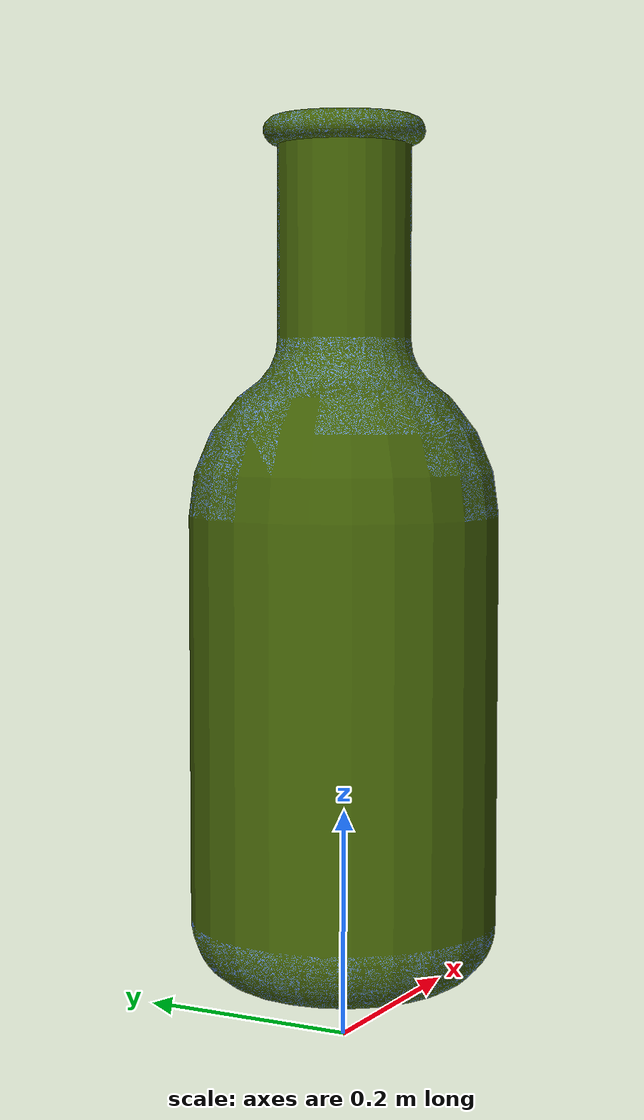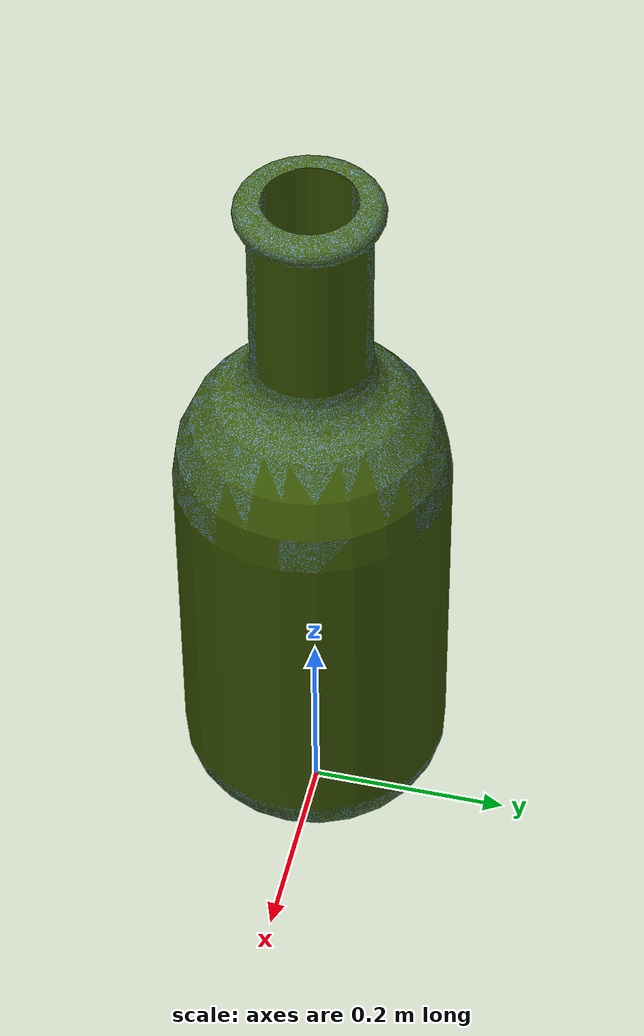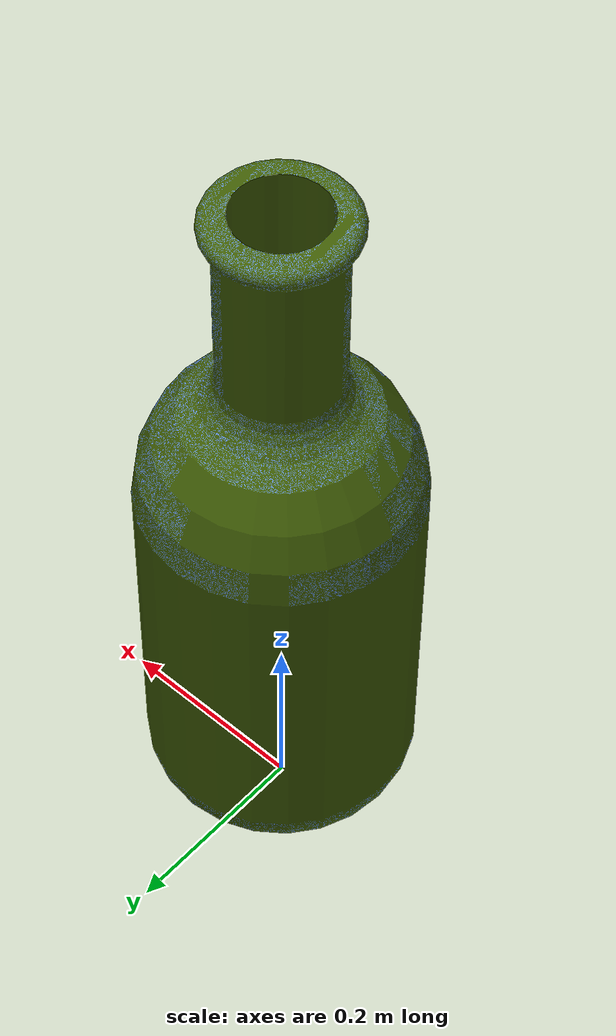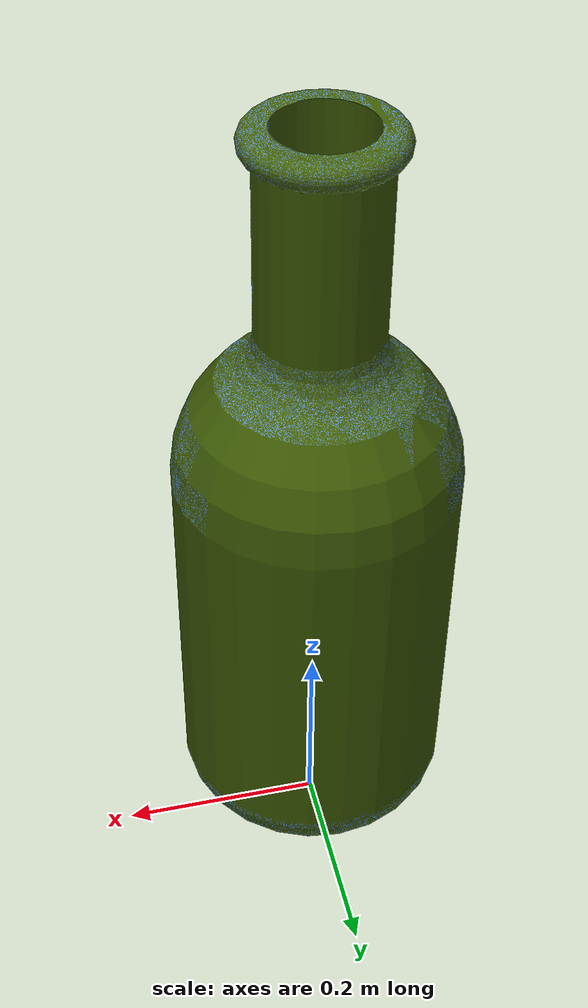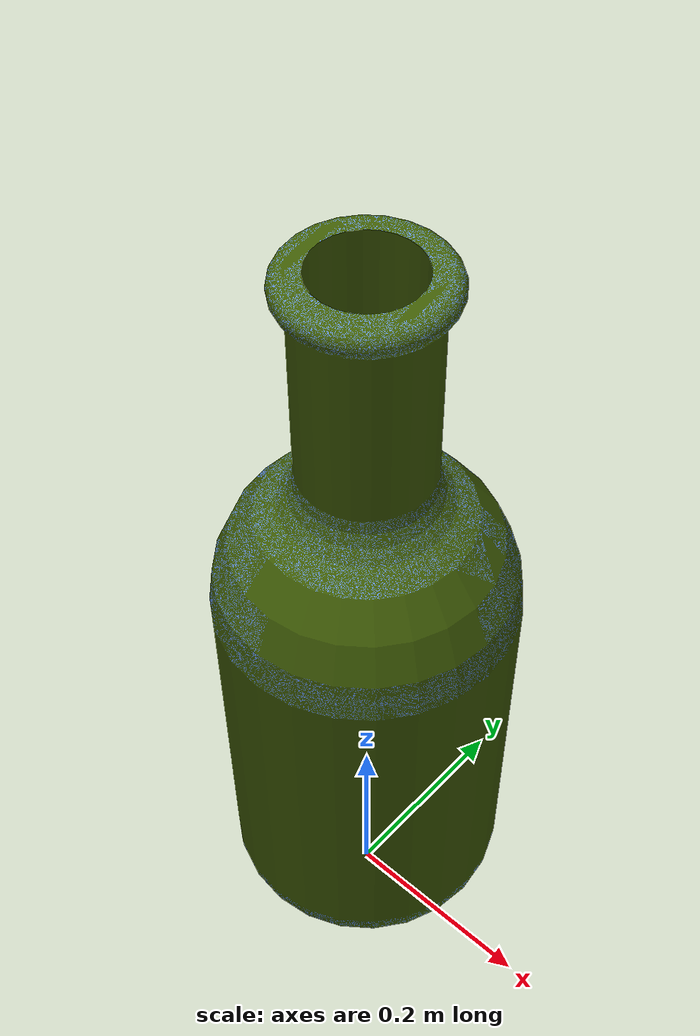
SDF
<?xml version="1.0" ?>
<sdf version="1.6">
  <model name="bottle1">
    <static>true</static>
    <link name="link">
      <collision name="collision">
        <geometry>
          <mesh>
            <scale>4.8 4.8 4.8</scale>
            <uri>model://bottle1/meshes/model.dae</uri>
          </mesh>
        </geometry>
      </collision>
      <visual name="visual">
        <geometry>
          <mesh>
            <scale>4.8 4.8 4.8</scale>
            <uri>model://bottle1/meshes/model.dae</uri>
          </mesh>
        </geometry>
      </visual>
    </link>
  </model>
</sdf>
